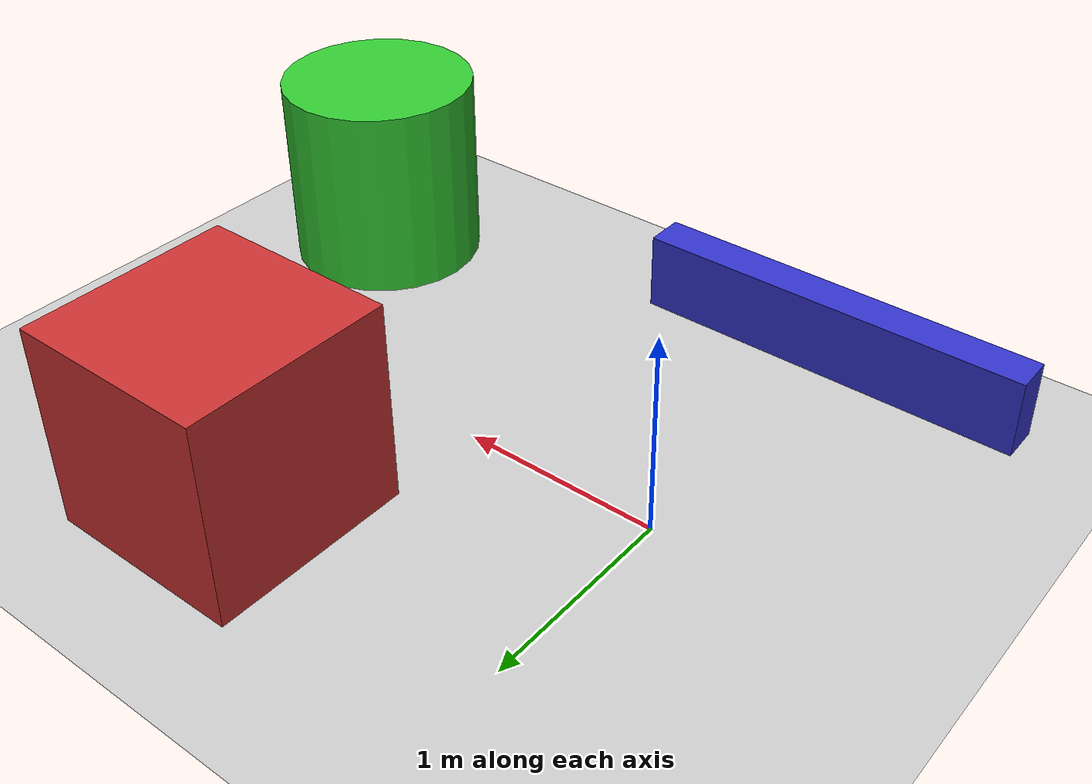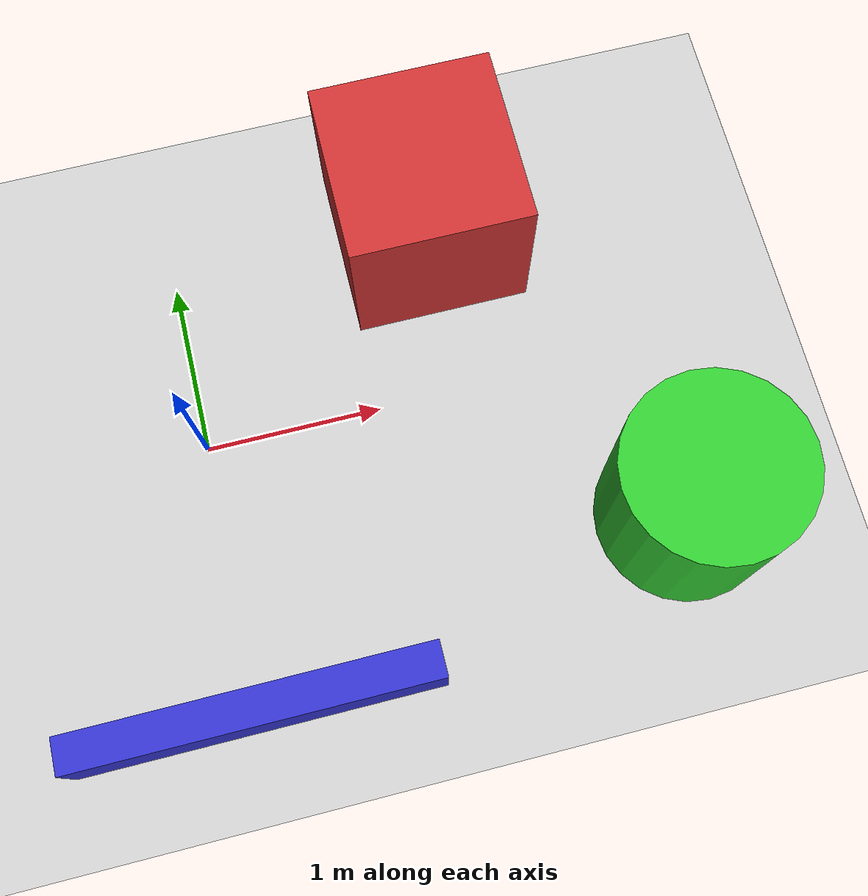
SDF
<?xml version="1.0"?>
<sdf version="1.6">
  <world name="mower_world">
    <include>
      <uri>model://sun</uri>
    </include>
    <include>
      <uri>model://ground_plane</uri>
    </include>

    <!-- 障碍物 1：立方体 -->
    <model name="obstacle1">
      <pose>1.5 1.0 0.5 0 0 0</pose>
      <static>true</static>
      <link name="link">
        <collision name="collision">
          <geometry>
            <box>
              <size>1.0 1.0 1.0</size>
            </box>
          </geometry>
        </collision>
        <visual name="visual">
          <geometry>
            <box>
              <size>1.0 1.0 1.0</size>
            </box>
          </geometry>
          <material>
            <ambient>0.8 0.2 0.2 1</ambient>
          </material>
        </visual>
      </link>
    </model>

    <!-- 障碍物 2：圆柱体 -->
    <model name="obstacle2">
      <pose>2.5 -1.0 0.5 0 0 0</pose>
      <static>true</static>
      <link name="link">
        <collision name="collision">
          <geometry>
            <cylinder>
              <radius>0.5</radius>
              <length>1.0</length>
            </cylinder>
          </geometry>
        </collision>
        <visual name="visual">
          <geometry>
            <cylinder>
              <radius>0.5</radius>
              <length>1.0</length>
            </cylinder>
          </geometry>
          <material>
            <ambient>0.2 0.8 0.2 1</ambient>
          </material>
        </visual>
      </link>
    </model>

    <!-- 障碍物 3：矮墙 -->
    <model name="obstacle3">
      <pose>0.0 -1.5 0.2 0 0 0</pose>
      <static>true</static>
      <link name="link">
        <collision name="collision">
          <geometry>
            <box>
              <size>2.0 0.2 0.4</size>
            </box>
          </geometry>
        </collision>
        <visual name="visual">
          <geometry>
            <box>
              <size>2.0 0.2 0.4</size>
            </box>
          </geometry>
          <material>
            <ambient>0.2 0.2 0.8 1</ambient>
          </material>
        </visual>
      </link>
    </model>

  </world>
</sdf>
